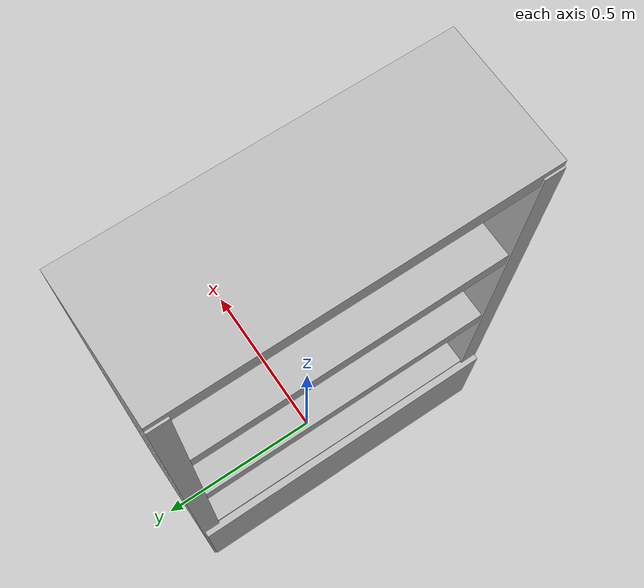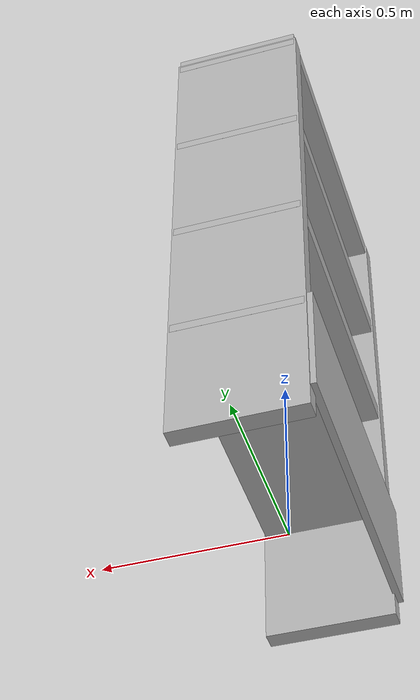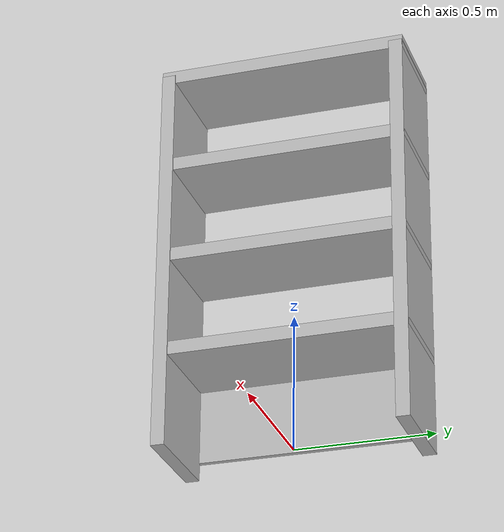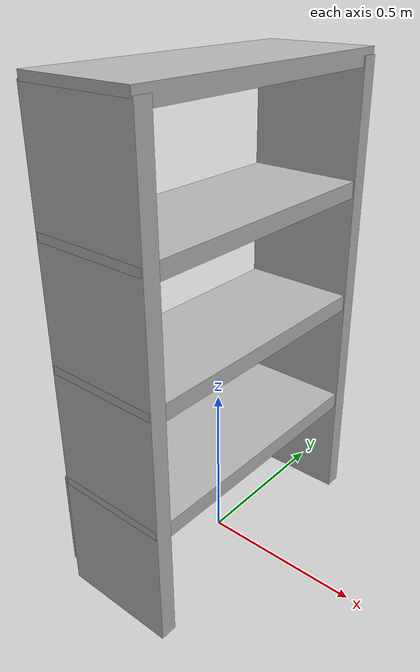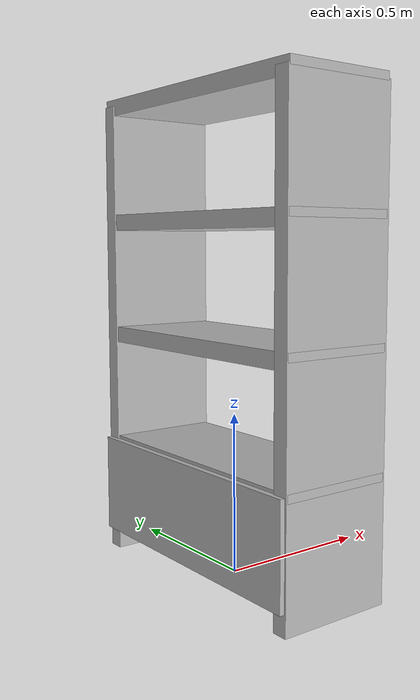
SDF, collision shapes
<?xml version='1.0'?>
<sdf version='1.7'>
  <model name='rack_with_box'>
    <link name='link'>
      <inertial>
        <pose>0 0 0 0 -0 0</pose>
        <mass>1.87</mass>
        <inertia>
          <ixx>0.01857</ixx>
          <ixy>0</ixy>
          <ixz>0</ixz>
          <iyy>0.015598</iyy>
          <iyz>0</iyz>
          <izz>0.00305</izz>
        </inertia>
      </inertial>
      <self_collide>0</self_collide>
      <enable_wind>0</enable_wind>
      <kinematic>0</kinematic>
      <pose>0 0 0 0 -0 0</pose>
      <gravity>1</gravity>
      <visual name='visual1'>
        <cast_shadows>0</cast_shadows>
        <geometry>
          <mesh>
            <uri>model://rack_with_box/meshes/rack.dae</uri>
          </mesh>
        </geometry>
        <material>
          <shader type='pixel'>
            <normal_map>__default__</normal_map>
          </shader>
          <emissive>0 0 0 1</emissive>

        </material>
        <pose>0 0 0 0 -0 0</pose>
        <transparency>0</transparency>
        <pose>0 0 0 0 -0 0</pose>
        <transparency>0</transparency>
      </visual>
      <visual name='visual_2'>
        <cast_shadows>0</cast_shadows>
        <geometry>
          <box>
            <size>0.02 0.9 0.31</size>
          </box>
        </geometry>
        <material>
          <lighting>1</lighting>
          <script>
            <uri>file://media/materials/scripts/gazebo.material</uri>
            <name>Gazebo/Grey</name>
          </script>
          <shader type='pixel'>
            <normal_map>__default__</normal_map>
          </shader>
          <ambient>0.3 0.3 0.3 1</ambient>
          <diffuse>0.7 0.7 0.7 1</diffuse>
          <specular>0.01 0.01 0.01 1</specular>
          <emissive>0 0 0 1</emissive>
        </material>
        <pose>-0.185 0 0.22 0 -0 0</pose>
        <transparency>0</transparency>
      </visual>
      <visual name='visual_3_box1'>
        <cast_shadows>0</cast_shadows>
        <geometry>
          <mesh>
            <uri>model://box/meshes/box.dae</uri>
          </mesh>
        </geometry>
        <material>
          <shader type='pixel'>
            <normal_map>__default__</normal_map>
          </shader>
          <emissive>0 0 0 1</emissive>

        </material>
        <pose>0 -0.2 1.48 0 -0 0.1</pose>
        <transparency>0</transparency>
      </visual>
      <visual name='visual_3_box2'>
        <cast_shadows>0</cast_shadows>
        <geometry>
          <mesh>
            <uri>model://box/meshes/box.dae</uri>
          </mesh>
        </geometry>
        <material>
          <shader type='pixel'>
            <normal_map>__default__</normal_map>
          </shader>
          <emissive>0 0 0 1</emissive>

        </material>
        <pose>0 0.18 1.48 0 0 -0.1</pose>
        <transparency>0</transparency>
      </visual>
      <visual name='visual_3_box3'>
        <cast_shadows>0</cast_shadows>
        <geometry>
          <mesh>
            <uri>model://box/meshes/box.dae</uri>
          </mesh>
        </geometry>
        <material>
          <shader type='pixel'>
            <normal_map>__default__</normal_map>
          </shader>
          <emissive>0 0 0 1</emissive>

        </material>
        <pose>0 0.3 1.11 0 0 -0.05</pose>
        <transparency>0</transparency>
      </visual>
      <visual name='visual_3_box4'>
        <cast_shadows>0</cast_shadows>
        <geometry>
          <mesh>
            <uri>model://box/meshes/box.dae</uri>
          </mesh>
        </geometry>
        <material>
          <shader type='pixel'>
            <normal_map>__default__</normal_map>
          </shader>
          <emissive>0 0 0 1</emissive>
        </material>
        <pose>0 -0.3 0.75 0 -0 0.07</pose>
        <transparency>0</transparency>
      </visual>
      <visual name='visual_3_box5'>
        <cast_shadows>0</cast_shadows>
        <geometry>
          <mesh>
            <uri>model://box/meshes/box.dae</uri>
          </mesh>
        </geometry>
        <material>
          <shader type='pixel'>
            <normal_map>__default__</normal_map>
          </shader>
          <emissive>0 0 0 1</emissive>

        </material>
        <pose>0 0.3 0.38 0 -0 0</pose>
        <transparency>0</transparency>
      </visual>
      <visual name='visual_3_box6'>
        <cast_shadows>0</cast_shadows>
        <geometry>
          <mesh>
            <uri>model://box/meshes/box.dae</uri>
          </mesh>
        </geometry>
        <material>
          <shader type='pixel'>
            <normal_map>__default__</normal_map>
          </shader>
          <emissive>0 0 0 1</emissive>

        </material>
        <pose>0 -0.2 0.38 0 -0 0</pose>
        <transparency>0</transparency>
      </visual>

      <collision name='collision_7'>
        <laser_retro>0</laser_retro>
        <max_contacts>10</max_contacts>
        <pose>0 0 0.36 0 1.57 1.57</pose>
        <geometry>
          <box>
            <size>0.05 0.35 0.91</size>
          </box>
        </geometry>
        <surface>
          <friction>
            <ode>
              <mu>1</mu>
              <mu2>1</mu2>
              <fdir1>0 0 0</fdir1>
              <slip1>0</slip1>
              <slip2>0</slip2>
            </ode>
            <torsional>
              <coefficient>1</coefficient>
              <patch_radius>0</patch_radius>
              <surface_radius>0</surface_radius>
              <use_patch_radius>1</use_patch_radius>
              <ode>
                <slip>0</slip>
              </ode>
            </torsional>
          </friction>
          <bounce>
            <restitution_coefficient>0</restitution_coefficient>
            <threshold>1e+06</threshold>
          </bounce>
          <contact>
            <collide_without_contact>0</collide_without_contact>
            <collide_without_contact_bitmask>1</collide_without_contact_bitmask>
            <collide_bitmask>1</collide_bitmask>
            <ode>
              <soft_cfm>0</soft_cfm>
              <soft_erp>0.2</soft_erp>
              <kp>1e15</kp>
              <kd>1e13</kd>
              <max_vel>0.01</max_vel>
              <min_depth>0</min_depth>
            </ode>
            <bullet>
              <split_impulse>1</split_impulse>
              <split_impulse_penetration_threshold>-0.01</split_impulse_penetration_threshold>
              <soft_cfm>0</soft_cfm>
              <soft_erp>0.2</soft_erp>
              <kp>1e+13</kp>
              <kd>1</kd>
            </bullet>
          </contact>
        </surface>
      </collision>

      <collision name='collision_6'>
        <laser_retro>0</laser_retro>
        <max_contacts>10</max_contacts>
        <pose>0 0 0.725 0 1.57 1.57</pose>
        <geometry>
          <box>
            <size>0.05 0.35 0.91</size>
          </box>
        </geometry>
        <surface>
          <friction>
            <ode>
              <mu>1</mu>
              <mu2>1</mu2>
              <fdir1>0 0 0</fdir1>
              <slip1>0</slip1>
              <slip2>0</slip2>
            </ode>
            <torsional>
              <coefficient>1</coefficient>
              <patch_radius>0</patch_radius>
              <surface_radius>0</surface_radius>
              <use_patch_radius>1</use_patch_radius>
              <ode>
                <slip>0</slip>
              </ode>
            </torsional>
          </friction>
          <bounce>
            <restitution_coefficient>0</restitution_coefficient>
            <threshold>1e+06</threshold>
          </bounce>
          <contact>
            <collide_without_contact>0</collide_without_contact>
            <collide_without_contact_bitmask>1</collide_without_contact_bitmask>
            <collide_bitmask>1</collide_bitmask>
            <ode>
              <soft_cfm>0</soft_cfm>
              <soft_erp>0.2</soft_erp>
              <kp>1e15</kp>
              <kd>1e13</kd>
              <max_vel>0.01</max_vel>
              <min_depth>0</min_depth>
            </ode>
            <bullet>
              <split_impulse>1</split_impulse>
              <split_impulse_penetration_threshold>-0.01</split_impulse_penetration_threshold>
              <soft_cfm>0</soft_cfm>
              <soft_erp>0.2</soft_erp>
              <kp>1e+13</kp>
              <kd>1</kd>
            </bullet>
          </contact>
        </surface>
      </collision>

      <collision name='collision_5'>
        <laser_retro>0</laser_retro>
        <max_contacts>10</max_contacts>
        <pose>0 0 1.09 0 1.57 1.57</pose>
        <geometry>
          <box>
            <size>0.05 0.35 0.91</size>
          </box>
        </geometry>
        <surface>
          <friction>
            <ode>
              <mu>1</mu>
              <mu2>1</mu2>
              <fdir1>0 0 0</fdir1>
              <slip1>0</slip1>
              <slip2>0</slip2>
            </ode>
            <torsional>
              <coefficient>1</coefficient>
              <patch_radius>0</patch_radius>
              <surface_radius>0</surface_radius>
              <use_patch_radius>1</use_patch_radius>
              <ode>
                <slip>0</slip>
              </ode>
            </torsional>
          </friction>
          <bounce>
            <restitution_coefficient>0</restitution_coefficient>
            <threshold>1e+06</threshold>
          </bounce>
          <contact>
            <collide_without_contact>0</collide_without_contact>
            <collide_without_contact_bitmask>1</collide_without_contact_bitmask>
            <collide_bitmask>1</collide_bitmask>
            <ode>
              <soft_cfm>0</soft_cfm>
              <soft_erp>0.2</soft_erp>
              <kp>1e15</kp>
              <kd>1e13</kd>
              <max_vel>0.01</max_vel>
              <min_depth>0</min_depth>
            </ode>
            <bullet>
              <split_impulse>1</split_impulse>
              <split_impulse_penetration_threshold>-0.01</split_impulse_penetration_threshold>
              <soft_cfm>0</soft_cfm>
              <soft_erp>0.2</soft_erp>
              <kp>1e+13</kp>
              <kd>1</kd>
            </bullet>
          </contact>
        </surface>
      </collision>

      <collision name='collision_3'>
        <laser_retro>0</laser_retro>
        <max_contacts>10</max_contacts>
        <pose>0 0 1.455 0 1.57 1.57</pose>
        <geometry>
          <box>
            <size>0.05 0.35 0.91</size>
          </box>
        </geometry>
        <surface>
          <friction>
            <ode>
              <mu>1</mu>
              <mu2>1</mu2>
              <fdir1>0 0 0</fdir1>
              <slip1>0</slip1>
              <slip2>0</slip2>
            </ode>
            <torsional>
              <coefficient>1</coefficient>
              <patch_radius>0</patch_radius>
              <surface_radius>0</surface_radius>
              <use_patch_radius>1</use_patch_radius>
              <ode>
                <slip>0</slip>
              </ode>
            </torsional>
          </friction>
          <bounce>
            <restitution_coefficient>0</restitution_coefficient>
            <threshold>1e+06</threshold>
          </bounce>
          <contact>
            <collide_without_contact>0</collide_without_contact>
            <collide_without_contact_bitmask>1</collide_without_contact_bitmask>
            <collide_bitmask>1</collide_bitmask>
            <ode>
              <soft_cfm>0</soft_cfm>
              <soft_erp>0.2</soft_erp>
              <kp>1e15</kp>
              <kd>1e13</kd>
              <max_vel>0.01</max_vel>
              <min_depth>0</min_depth>
            </ode>
            <bullet>
              <split_impulse>1</split_impulse>
              <split_impulse_penetration_threshold>-0.01</split_impulse_penetration_threshold>
              <soft_cfm>0</soft_cfm>
              <soft_erp>0.2</soft_erp>
              <kp>1e+13</kp>
              <kd>1</kd>
            </bullet>
          </contact>
        </surface>
      </collision>

      <collision name='collision_1'>
        <laser_retro>0</laser_retro>
        <max_contacts>10</max_contacts>
        <pose>0 0.43 0.73 0 -0 1.57</pose>
        <geometry>
          <box>
            <size>0.05 0.36 1.46</size>
          </box>
        </geometry>
        <surface>
          <friction>
            <ode>
              <mu>1</mu>
              <mu2>1</mu2>
              <fdir1>0 0 0</fdir1>
              <slip1>0</slip1>
              <slip2>0</slip2>
            </ode>
            <torsional>
              <coefficient>1</coefficient>
              <patch_radius>0</patch_radius>
              <surface_radius>0</surface_radius>
              <use_patch_radius>1</use_patch_radius>
              <ode>
                <slip>0</slip>
              </ode>
            </torsional>
          </friction>
          <bounce>
            <restitution_coefficient>0</restitution_coefficient>
            <threshold>1e+06</threshold>
          </bounce>
          <contact>
            <collide_without_contact>0</collide_without_contact>
            <collide_without_contact_bitmask>1</collide_without_contact_bitmask>
            <collide_bitmask>1</collide_bitmask>
            <ode>
              <soft_cfm>0</soft_cfm>
              <soft_erp>0.2</soft_erp>
              <kp>1e15</kp>
              <kd>1e13</kd>
              <max_vel>0.01</max_vel>
              <min_depth>0</min_depth>
            </ode>
            <bullet>
              <split_impulse>1</split_impulse>
              <split_impulse_penetration_threshold>-0.01</split_impulse_penetration_threshold>
              <soft_cfm>0</soft_cfm>
              <soft_erp>0.2</soft_erp>
              <kp>1e+13</kp>
              <kd>1</kd>
            </bullet>
          </contact>
        </surface>
      </collision>

      <collision name='collision_2'>
        <laser_retro>0</laser_retro>
        <max_contacts>10</max_contacts>
        <pose>0 -0.43 0.73 0 -0 1.57</pose>
        <geometry>
          <box>
            <size>0.05 0.36 1.46</size>
          </box>
        </geometry>
        <surface>
          <friction>
            <ode>
              <mu>1</mu>
              <mu2>1</mu2>
              <fdir1>0 0 0</fdir1>
              <slip1>0</slip1>
              <slip2>0</slip2>
            </ode>
            <torsional>
              <coefficient>1</coefficient>
              <patch_radius>0</patch_radius>
              <surface_radius>0</surface_radius>
              <use_patch_radius>1</use_patch_radius>
              <ode>
                <slip>0</slip>
              </ode>
            </torsional>
          </friction>
          <bounce>
            <restitution_coefficient>0</restitution_coefficient>
            <threshold>1e+06</threshold>
          </bounce>
          <contact>
            <collide_without_contact>0</collide_without_contact>
            <collide_without_contact_bitmask>1</collide_without_contact_bitmask>
            <collide_bitmask>1</collide_bitmask>
            <ode>
              <soft_cfm>0</soft_cfm>
              <soft_erp>0.2</soft_erp>
              <kp>1e15</kp>
              <kd>1e13</kd>
              <max_vel>0.01</max_vel>
              <min_depth>0</min_depth>
            </ode>
            <bullet>
              <split_impulse>1</split_impulse>
              <split_impulse_penetration_threshold>-0.01</split_impulse_penetration_threshold>
              <soft_cfm>0</soft_cfm>
              <soft_erp>0.2</soft_erp>
              <kp>1e+13</kp>
              <kd>1</kd>
            </bullet>
          </contact>
        </surface>
      </collision>

      <collision name='collision'>
        <laser_retro>0</laser_retro>
        <max_contacts>10</max_contacts>
        <pose>-0.185 0 0.22 0 -0 0</pose>
        <geometry>
          <box>
            <size>0.02 0.9 0.31</size>
          </box>
        </geometry>
        <surface>
          <friction>
            <ode>
              <mu>1</mu>
              <mu2>1</mu2>
              <fdir1>0 0 0</fdir1>
              <slip1>0</slip1>
              <slip2>0</slip2>
            </ode>
            <torsional>
              <coefficient>1</coefficient>
              <patch_radius>0</patch_radius>
              <surface_radius>0</surface_radius>
              <use_patch_radius>1</use_patch_radius>
              <ode>
                <slip>0</slip>
              </ode>
            </torsional>
          </friction>
          <bounce>
            <restitution_coefficient>0</restitution_coefficient>
            <threshold>1e+06</threshold>
          </bounce>
          <contact>
            <collide_without_contact>0</collide_without_contact>
            <collide_without_contact_bitmask>1</collide_without_contact_bitmask>
            <collide_bitmask>1</collide_bitmask>
            <ode>
              <soft_cfm>0</soft_cfm>
              <soft_erp>0.2</soft_erp>
              <kp>1e15</kp>
              <kd>1e13</kd>
              <max_vel>0.01</max_vel>
              <min_depth>0</min_depth>
            </ode>
            <bullet>
              <split_impulse>1</split_impulse>
              <split_impulse_penetration_threshold>-0.01</split_impulse_penetration_threshold>
              <soft_cfm>0</soft_cfm>
              <soft_erp>0.2</soft_erp>
              <kp>1e+13</kp>
              <kd>1</kd>
            </bullet>
          </contact>
        </surface>
      </collision>
    </link>
    <static>0</static>
    <allow_auto_disable>1</allow_auto_disable>
  </model>
</sdf>
